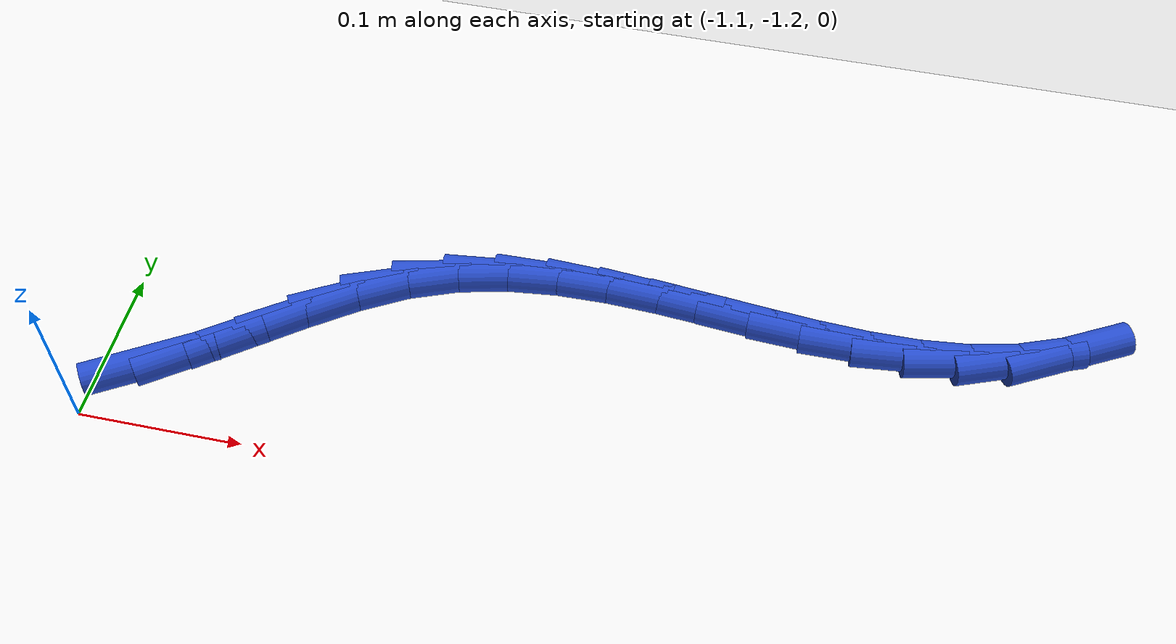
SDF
<sdf version="1.6">
 <world name="default">
  <model name="ground_plane">
   <static>1</static>
   <link name="link">
    <collision name="collision">
     <geometry><plane><normal>0 0 1</normal><size>100 100</size></plane></geometry>
     <surface><friction><ode><mu>100</mu><mu2>50</mu2></ode></friction></surface>
    </collision>
    <visual name="visual">
     <cast_shadows>0</cast_shadows>
     <geometry><plane><normal>0 0 1</normal><size>100 100</size></plane></geometry>
     <material>
      <script><uri>file://media/materials/scripts/gazebo.material</uri><name>Gazebo/WhiteGlow</name></script>
     </material>
    </visual>
   </link>
  </model>
  <model name="line">
   <link name="link_173">
    <pose>-1.0687221681016879 -1.1617863827025168 0.01 0 1.57 0.5483036393713457</pose>
    <collision name="collision">
     <geometry><cylinder><radius>0.01</radius><length>0.08</length></cylinder></geometry>
    </collision>
    <visual name="visual">
     <material>
      <script><name>Gazebo/Blue</name><uri>file://media/materials/scripts/gazebo.material</uri></script>
     </material>
     <geometry><cylinder><radius>0.01</radius><length>0.08</length></cylinder></geometry>
    </visual>
   </link>
   <link name="link_174">
    <pose>-1.0434964838984402 -1.1463792003248838 0.01 0 1.57 0.6295936030602767</pose>
    <collision name="collision">
     <geometry><cylinder><radius>0.01</radius><length>0.08</length></cylinder></geometry>
    </collision>
    <visual name="visual">
     <material>
      <script><name>Gazebo/Blue</name><uri>file://media/materials/scripts/gazebo.material</uri></script>
     </material>
     <geometry><cylinder><radius>0.01</radius><length>0.08</length></cylinder></geometry>
    </visual>
   </link>
   <link name="link_175">
    <pose>-1.017866881174287 -1.1277082276629107 0.01 0 1.57 0.6486198074114581</pose>
    <collision name="collision">
     <geometry><cylinder><radius>0.01</radius><length>0.08</length></cylinder></geometry>
    </collision>
    <visual name="visual">
     <material>
      <script><name>Gazebo/Blue</name><uri>file://media/materials/scripts/gazebo.material</uri></script>
     </material>
     <geometry><cylinder><radius>0.01</radius><length>0.08</length></cylinder></geometry>
    </visual>
   </link>
   <link name="link_176">
    <pose>-0.9916425500639976 -1.1078294278550513 0.01 0 1.57 0.6137944191452395</pose>
    <collision name="collision">
     <geometry><cylinder><radius>0.01</radius><length>0.08</length></cylinder></geometry>
    </collision>
    <visual name="visual">
     <material>
      <script><name>Gazebo/Blue</name><uri>file://media/materials/scripts/gazebo.material</uri></script>
     </material>
     <geometry><cylinder><radius>0.01</radius><length>0.08</length></cylinder></geometry>
    </visual>
   </link>
   <link name="link_177">
    <pose>-0.9646326807023389 -1.088798764039759 0.01 0 1.57 0.5227599523141911</pose>
    <collision name="collision">
     <geometry><cylinder><radius>0.01</radius><length>0.08</length></cylinder></geometry>
    </collision>
    <visual name="visual">
     <material>
      <script><name>Gazebo/Blue</name><uri>file://media/materials/scripts/gazebo.material</uri></script>
     </material>
     <geometry><cylinder><radius>0.01</radius><length>0.08</length></cylinder></geometry>
    </visual>
   </link>
   <link name="link_178">
    <pose>-0.9366464632240785 -1.0726721993554853 0.01 0 1.57 0.3764668148866038</pose>
    <collision name="collision">
     <geometry><cylinder><radius>0.01</radius><length>0.08</length></cylinder></geometry>
    </collision>
    <visual name="visual">
     <material>
      <script><name>Gazebo/Blue</name><uri>file://media/materials/scripts/gazebo.material</uri></script>
     </material>
     <geometry><cylinder><radius>0.01</radius><length>0.08</length></cylinder></geometry>
    </visual>
   </link>
   <link name="link_179">
    <pose>-0.9075405953444518 -1.061166019879923 0.01 0 1.57 0.2298076466471668</pose>
    <collision name="collision">
     <geometry><cylinder><radius>0.01</radius><length>0.08</length></cylinder></geometry>
    </collision>
    <visual name="visual">
     <material>
      <script><name>Gazebo/Blue</name><uri>file://media/materials/scripts/gazebo.material</uri></script>
     </material>
     <geometry><cylinder><radius>0.01</radius><length>0.08</length></cylinder></geometry>
    </visual>
   </link>
   <link name="link_180">
    <pose>-0.8774338299590309 -1.0541228289534639 0.01 0 1.57 0.10895978429181097</pose>
    <collision name="collision">
     <geometry><cylinder><radius>0.01</radius><length>0.08</length></cylinder></geometry>
    </collision>
    <visual name="visual">
     <material>
      <script><name>Gazebo/Blue</name><uri>file://media/materials/scripts/gazebo.material</uri></script>
     </material>
     <geometry><cylinder><radius>0.01</radius><length>0.08</length></cylinder></geometry>
    </visual>
   </link>
   <link name="link_181">
    <pose>-0.8465347864434174 -1.0507426886315607 0.01 0 1.57 0.016439385677886553</pose>
    <collision name="collision">
     <geometry><cylinder><radius>0.01</radius><length>0.08</length></cylinder></geometry>
    </collision>
    <visual name="visual">
     <material>
      <script><name>Gazebo/Blue</name><uri>file://media/materials/scripts/gazebo.material</uri></script>
     </material>
     <geometry><cylinder><radius>0.01</radius><length>0.08</length></cylinder></geometry>
    </visual>
   </link>
   <link name="link_182">
    <pose>-0.8150521644439309 -1.0502250870376562 0.01 0 1.57 -0.048441246238407135</pose>
    <collision name="collision">
     <geometry><cylinder><radius>0.01</radius><length>0.08</length></cylinder></geometry>
    </collision>
    <visual name="visual">
     <material>
      <script><name>Gazebo/Blue</name><uri>file://media/materials/scripts/gazebo.material</uri></script>
     </material>
     <geometry><cylinder><radius>0.01</radius><length>0.08</length></cylinder></geometry>
    </visual>
   </link>
   <link name="link_183">
    <pose>-0.7831946636068907 -1.0517695122951944 0.01 0 1.57 -0.087397586697661</pose>
    <collision name="collision">
     <geometry><cylinder><radius>0.01</radius><length>0.08</length></cylinder></geometry>
    </collision>
    <visual name="visual">
     <material>
      <script><name>Gazebo/Blue</name><uri>file://media/materials/scripts/gazebo.material</uri></script>
     </material>
     <geometry><cylinder><radius>0.01</radius><length>0.08</length></cylinder></geometry>
    </visual>
   </link>
   <link name="link_184">
    <pose>-0.7511709835786156 -1.0545754525276183 0.01 0 1.57 -0.10179900969504763</pose>
    <collision name="collision">
     <geometry><cylinder><radius>0.01</radius><length>0.08</length></cylinder></geometry>
    </collision>
    <visual name="visual">
     <material>
      <script><name>Gazebo/Blue</name><uri>file://media/materials/scripts/gazebo.material</uri></script>
     </material>
     <geometry><cylinder><radius>0.01</radius><length>0.08</length></cylinder></geometry>
    </visual>
   </link>
   <link name="link_185">
    <pose>-0.719189824005426 -1.0578423958583711 0.01 0 1.57 -0.09200050731440143</pose>
    <collision name="collision">
     <geometry><cylinder><radius>0.01</radius><length>0.08</length></cylinder></geometry>
    </collision>
    <visual name="visual">
     <material>
      <script><name>Gazebo/Blue</name><uri>file://media/materials/scripts/gazebo.material</uri></script>
     </material>
     <geometry><cylinder><radius>0.01</radius><length>0.08</length></cylinder></geometry>
    </visual>
   </link>
   <link name="link_186">
    <pose>-0.6874598845336407 -1.060769830410896 0.01 0 1.57 -0.05709849326312839</pose>
    <collision name="collision">
     <geometry><cylinder><radius>0.01</radius><length>0.08</length></cylinder></geometry>
    </collision>
    <visual name="visual">
     <material>
      <script><name>Gazebo/Blue</name><uri>file://media/materials/scripts/gazebo.material</uri></script>
     </material>
     <geometry><cylinder><radius>0.01</radius><length>0.08</length></cylinder></geometry>
    </visual>
   </link>
   <link name="link_187">
    <pose>-0.656189864809579 -1.0625572443086362 0.01 0 1.57 0.0050036061787355835</pose>
    <collision name="collision">
     <geometry><cylinder><radius>0.01</radius><length>0.08</length></cylinder></geometry>
    </collision>
    <visual name="visual">
     <material>
      <script><name>Gazebo/Blue</name><uri>file://media/materials/scripts/gazebo.material</uri></script>
     </material>
     <geometry><cylinder><radius>0.01</radius><length>0.08</length></cylinder></geometry>
    </visual>
   </link>
   <link name="link_188">
    <pose>-0.6255884644795593 -1.062404125675035 0.01 0 1.57 0.09706166175441876</pose>
    <collision name="collision">
     <geometry><cylinder><radius>0.01</radius><length>0.08</length></cylinder></geometry>
    </collision>
    <visual name="visual">
     <material>
      <script><name>Gazebo/Blue</name><uri>file://media/materials/scripts/gazebo.material</uri></script>
     </material>
     <geometry><cylinder><radius>0.01</radius><length>0.08</length></cylinder></geometry>
    </visual>
   </link>
   <link name="link_189">
    <pose>-0.5958643831899029 -1.0595099626335354 0.01 0 1.57 0.22105369869273706</pose>
    <collision name="collision">
     <geometry><cylinder><radius>0.01</radius><length>0.08</length></cylinder></geometry>
    </collision>
    <visual name="visual">
     <material>
      <script><name>Gazebo/Blue</name><uri>file://media/materials/scripts/gazebo.material</uri></script>
     </material>
     <geometry><cylinder><radius>0.01</radius><length>0.08</length></cylinder></geometry>
    </visual>
   </link>
   <link name="link_190">
    <pose>-0.5672263205869279 -1.053074243307581 0.01 0 1.57 0.36936056852149</pose>
    <collision name="collision">
     <geometry><cylinder><radius>0.01</radius><length>0.08</length></cylinder></geometry>
    </collision>
    <visual name="visual">
     <material>
      <script><name>Gazebo/Blue</name><uri>file://media/materials/scripts/gazebo.material</uri></script>
     </material>
     <geometry><cylinder><radius>0.01</radius><length>0.08</length></cylinder></geometry>
    </visual>
   </link>
   <link name="link_191">
    <pose>-0.5398466806015341 -1.04247482576611 0.01 0 1.57 0.5053567355671221</pose>
    <collision name="collision">
     <geometry><cylinder><radius>0.01</radius><length>0.08</length></cylinder></geometry>
    </collision>
    <visual name="visual">
     <material>
      <script><name>Gazebo/Blue</name><uri>file://media/materials/scripts/gazebo.material</uri></script>
     </material>
     <geometry><cylinder><radius>0.01</radius><length>0.08</length></cylinder></geometry>
    </visual>
   </link>
  </model>
 </world>
</sdf>
